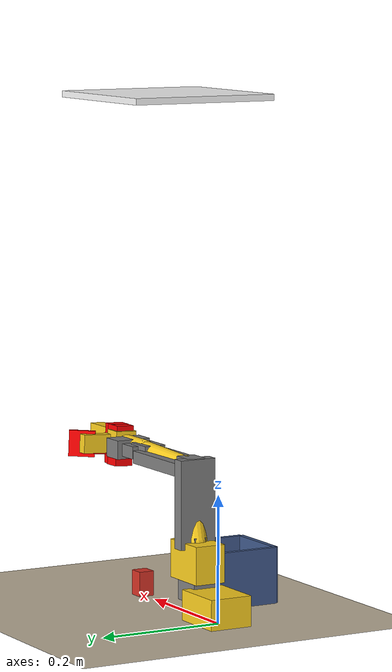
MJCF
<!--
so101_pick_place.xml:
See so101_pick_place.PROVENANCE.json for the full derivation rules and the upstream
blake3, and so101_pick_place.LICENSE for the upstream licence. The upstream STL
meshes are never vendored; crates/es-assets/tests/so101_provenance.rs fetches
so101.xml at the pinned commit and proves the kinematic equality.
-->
<mujoco model="so101_reach_mjx">
  <include file="../../../tests/fixtures/mjcf/so101_pick_place.xml"/>
  <contact>
    <exclude body1="shoulder" body2="upper_arm"/>
    <exclude body1="shoulder" body2="lower_arm"/>
    <exclude body1="shoulder" body2="wrist"/>
    <exclude body1="shoulder" body2="gripper"/>
    <exclude body1="shoulder" body2="camera_mount"/>
    <exclude body1="shoulder" body2="moving_jaw_so101_v1"/>
    <exclude body1="upper_arm" body2="lower_arm"/>
    <exclude body1="upper_arm" body2="wrist"/>
    <exclude body1="upper_arm" body2="gripper"/>
    <exclude body1="upper_arm" body2="camera_mount"/>
    <exclude body1="upper_arm" body2="moving_jaw_so101_v1"/>
    <exclude body1="lower_arm" body2="wrist"/>
    <exclude body1="lower_arm" body2="gripper"/>
    <exclude body1="lower_arm" body2="camera_mount"/>
    <exclude body1="lower_arm" body2="moving_jaw_so101_v1"/>
    <exclude body1="wrist" body2="gripper"/>
    <exclude body1="wrist" body2="camera_mount"/>
    <exclude body1="wrist" body2="moving_jaw_so101_v1"/>
    <exclude body1="gripper" body2="camera_mount"/>
    <exclude body1="gripper" body2="moving_jaw_so101_v1"/>
    <exclude body1="camera_mount" body2="moving_jaw_so101_v1"/>
    <exclude body1="world" body2="shoulder"/>
    <exclude body1="world" body2="upper_arm"/>
    <exclude body1="world" body2="lower_arm"/>
    <exclude body1="world" body2="wrist"/>
    <exclude body1="world" body2="gripper"/>
    <exclude body1="world" body2="camera_mount"/>
    <exclude body1="world" body2="moving_jaw_so101_v1"/>
    <exclude body1="shoulder" body2="cube"/>
    <exclude body1="upper_arm" body2="cube"/>
    <exclude body1="lower_arm" body2="cube"/>
    <exclude body1="wrist" body2="cube"/>
    <exclude body1="camera_mount" body2="cube"/>
    <exclude body1="gripper" body2="cube"/>
    <exclude body1="moving_jaw_so101_v1" body2="cube"/>
  </contact>
</mujoco>

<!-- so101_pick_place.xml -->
<mujoco model="so101_pick_place">
  <option integrator="implicitfast" timestep="0.005" cone="elliptic" iterations="10" impratio="10"/>

  <compiler angle="radian" autolimits="true"/>

  <default>
    <default class="sts3215">
      <joint damping="0.60" frictionloss="0.052" armature="0.028"/>
      <position kp="998.22" kv="2.731" forcerange="-2.94 2.94"/>
    </default>
  </default>

  <worldbody>
    <!-- Table: the ground plane the arm, the cube and the bin stand on. -->
    <geom name="table" type="plane" size="0.6 0.6 0.05" rgba="0.76 0.71 0.62 1"/>

    <geom name="bin_floor" type="box" size="0.054 0.054 0.004" pos="0.14 -0.1 0.004" rgba="0.25 0.35 0.55 1"/>
    <geom name="bin_wall_nx" type="box" size="0.004 0.054 0.045" pos="0.086 -0.1 0.045" rgba="0.25 0.35 0.55 1"/>
    <geom name="bin_wall_px" type="box" size="0.004 0.054 0.045" pos="0.194 -0.1 0.045" rgba="0.25 0.35 0.55 1"/>
    <geom name="bin_wall_ny" type="box" size="0.054 0.004 0.045" pos="0.14 -0.154 0.045" rgba="0.25 0.35 0.55 1"/>
    <geom name="bin_wall_py" type="box" size="0.054 0.004 0.045" pos="0.14 -0.046 0.045" rgba="0.25 0.35 0.55 1"/>

    <!-- Emitter for the path-traced render path: es-render infers emission from the
         `_light` name suffix (crates/es-render/src/scene.rs:30). -->
    <geom name="ceiling_light" type="box" size="0.12 0.12 0.005" pos="0.16 0 0.8" contype="0" conaffinity="0"
      rgba="1 1 1 1"/>

    <!-- The one fixed overhead camera the Observation IR declares. Identity orientation
         looks along -Z with image-up along +Y. -->
    <camera name="overhead" pos="0.16 0 0.5" fovy="45"/>

    <!-- Link base -->
    <body name="base" pos="0 0 0" quat="1 0 0 0">
      <inertial pos="0.0137179 -5.19711e-05 0.0334843" mass="0.147"
        fullinertia="0.000114686 0.000136117 0.000130364 -4.59787e-07 4.97151e-06 9.75275e-08"/>
      <!-- Replaces the base_motor_holder_so101_v1, base_so101_v2, sts3215_03a_v1 and
           waveshare_mounting_plate_so101_v2 visual meshes. -->
      <geom name="base_shell" type="box" size="0.045 0.035 0.024" pos="0.005 0 0.024" contype="0" conaffinity="0"
        rgba="1 0.82 0.12 1"/>
      <!-- Frame baseframe -->
      <site name="baseframe" pos="0 0 0" quat="1 0 0 0"/>
      <!-- Link shoulder -->
      <body name="shoulder" pos="0.0388353 0 0.0624" quat="0 0 -1 0">
        <!-- Joint from base to shoulder -->
        <joint axis="0 0 1" name="shoulder_pan" type="hinge" range="-1.91986 1.91986" class="sts3215"/>
        <inertial pos="-0.0307604 -1.7e-05 -0.0252713" mass="0.100006"
          fullinertia="8.3759e-05 8.10403e-05 2.39783e-05 7.55525e-08 -1.16342e-06 1.54663e-07"/>
        <!-- Upstream class="collision" primitive, sts3215_03a_v1_2 -->
        <geom name="shoulder_servo_col" type="box" condim="3" pos="-0.030399 0.000422 -0.0387" quat="1 1 1 -1"
          size="0.023 0.015 0.01"/>
        <!-- Upstream class="collision" primitive, motor_holder_so101_base_v1 -->
        <geom name="shoulder_holder_col" type="box" condim="3" pos="-0.025 0 0.0" quat="1 1 -1 1"
          size="0.038 0.025 0.02"/>
        <!-- Replaces the sts3215_03a_v1_2, motor_holder_so101_base_v1 and
             rotation_pitch_so101_v1 visual meshes. -->
        <geom name="shoulder_shell" type="box" size="0.04 0.025 0.03" pos="-0.025 0 -0.025" contype="0"
          conaffinity="0" rgba="1 0.82 0.12 1"/>
        <!-- Link upper_arm -->
        <body name="upper_arm" pos="-0.0303992 -0.0182778 -0.0542" quat="1 -1 -1 -1">
          <!-- Joint from shoulder to upper_arm -->
          <joint axis="0 0 1" name="shoulder_lift" type="hinge" range="-1.7453293 1.7453293" class="sts3215"/>
          <inertial pos="-0.089847 -0.008382 0.018409" mass="0.103"
            fullinertia="4.08002e-05 0.000147318 0.000142487 -1.97819e-05 -4.03016e-08 8.97326e-09"/>
          <!-- Upstream class="collision" primitive, sts3215_03a_v1_3 -->
          <geom name="upper_arm_servo_col" type="box" condim="3" pos="-0.06 0 0.02" quat="0 -1 1 0"
            size="0.01 0.07 0.03"/>
          <!-- Upstream class="collision" primitive, upper_arm_so101_v1 -->
          <geom name="upper_arm_link_col" type="box" condim="3" pos="-0.12 -0.014 0.0182" quat="0 1 0 0"
            size="0.01 0.02 0.015"/>
          <!-- Replaces the sts3215_03a_v1_3 and upper_arm_so101_v1 visual meshes. -->
          <geom name="upper_arm_shell" type="capsule" size="0.018" fromto="0 0 0.0182 -0.11257 -0.028 0.0182"
            contype="0" conaffinity="0" rgba="1 0.82 0.12 1"/>
          <!-- Link lower_arm -->
          <body name="lower_arm" pos="-0.11257 -0.028 0" quat="1 0 0 1">
            <!-- Joint from upper_arm to lower_arm -->
            <!-- Note: 5-degree calibration offset applied to joint range -->
            <joint axis="0 0 1" name="elbow_flex" type="hinge" range="-1.69 1.69" class="sts3215"/>
            <inertial pos="-0.098070 0.0032438 0.018283" mass="0.104"
              fullinertia="2.87438e-05 0.000159844 0.00014529 7.41152e-06 1.26409e-06 -4.90188e-08"/>
            <!-- Upstream class="collision" primitive, under_arm_so101_v1 -->
            <geom name="lower_arm_link_col" type="box" condim="3" pos="-0.05 0 0.0182" quat="0 1 0 0"
              size="0.07 0.01 0.03"/>
            <!-- Upstream class="collision" primitive, motor_holder_so101_wrist_v1 -->
            <geom name="lower_arm_holder_col" type="box" condim="3" pos="-0.125 0.005 0.018" quat="0 -1 0 0"
              size="0.023 0.013 0.018"/>
            <!-- Replaces the under_arm_so101_v1, motor_holder_so101_wrist_v1 and
                 sts3215_03a_v1_4 visual meshes. -->
            <geom name="lower_arm_shell" type="capsule" size="0.016" fromto="0 0 0.0182 -0.1349 0.0052 0.0182"
              contype="0" conaffinity="0" rgba="1 0.82 0.12 1"/>
            <!-- Link wrist -->
            <body name="wrist" pos="-0.1349 0.0052 0" quat="1 0 0 -1">
              <!-- Joint from lower_arm to wrist -->
              <joint axis="0 0 1" name="wrist_flex" type="hinge" range="-1.658063 1.658063" class="sts3215"/>
              <inertial pos="-0.000103312 -0.0386143 0.0281156" mass="0.079"
                fullinertia="3.68263e-05 2.5391e-05 2.1e-05 1.7893e-08 -5.28128e-08 3.6412e-06"/>
              <!-- Upstream class="collision" primitive, sts3215_03a_no_horn_v1 -->
              <geom name="wrist_servo_col" type="box" condim="3" pos="0 -0.0424 0.0256" quat="1 1 1 -1"
                size="0.029 0.015 0.018"/>
              <!-- Upstream class="collision" primitive, wrist_roll_pitch_so101_v2 -->
              <geom name="wrist_pitch_col" type="box" condim="3" pos="0 -0.02 0.0191" quat="1 -1 -1 -1"
                size="0.027 0.01 0.03"/>
              <!-- Replaces the sts3215_03a_no_horn_v1 and wrist_roll_pitch_so101_v2 visual meshes. -->
              <geom name="wrist_shell" type="capsule" size="0.017" fromto="0 0 0.0181 0 -0.0611 0.0181"
                contype="0" conaffinity="0" rgba="1 0.82 0.12 1"/>
              <!-- Link gripper -->
              <body name="gripper" pos="5.55112e-17 -0.0611 0.0181" quat="0.0172091 -0.0172091 0.706897 0.706897">
                <!-- Joint from wrist to gripper -->
                <joint axis="0 0 1" name="wrist_roll" type="hinge" range="-2.7438473 2.7438473" class="sts3215"/>
                <inertial pos="0.000214 0.000245 -0.025187" mass="0.087"
                  fullinertia="2.75087e-05 4.33657e-05 3.45059e-05 -3.35241e-07 -5.7352e-06 -5.17847e-08"/>
                <!-- Upstream class="collision" primitive, wrist_roll_follower_so101_v1 -->
                <geom name="fixed_jaw_col" type="box" condim="3" pos="0 -0.000218 0.00095" quat="0 1 0 0"
                  size="0.01 0.01 0.018"/>
                <!-- Upstream class="collision_gripper" primitives -->
                <geom name="fixed_jaw_box1" type="box" size="0.0325 0.015 0.015" pos="-0.0025 0 -0.022" condim="6"
                  friction="1 5e-3 5e-4" solref="0.01 1" rgba="1 0 0 1" mass="0"/>
                <geom name="fixed_jaw_box2" type="box" size="0.01 0.015 0.005" pos="-0.024 0 -0.04" condim="6"
                  friction="1 5e-3 5e-4" solref="0.01 1" rgba="1 0 0 1" mass="0"/>
                <geom name="fixed_jaw_sph_tip1" type="sphere" size="0.00075" pos="-0.0081 0 -0.101" condim="6"
                  friction="1 5e-3 5e-4" solref="0.01 1" rgba="1 0 0 1" mass="0"/>
                <geom name="fixed_jaw_sph_tip2" type="sphere" size="0.00075" pos="-0.0081 0.0035 -0.0975"
                  condim="6" friction="1 5e-3 5e-4" solref="0.01 1" rgba="1 0 0 1" mass="0"/>
                <geom name="fixed_jaw_sph_tip3" type="sphere" size="0.00075" pos="-0.0081 -0.0035 -0.0975"
                  condim="6" friction="1 5e-3 5e-4" solref="0.01 1" rgba="1 0 0 1" mass="0"/>
                <geom name="fixed_jaw_box3" type="capsule" size="0.0011 0.002" pos="-0.009 0 -0.103"
                  euler="1.57 0 0" condim="6" friction="1 5e-3 5e-4" solref="0.01 1" rgba="1 0 0 1" mass="0"/>
                <geom name="fixed_jaw_box4" type="box" size="0.001 0.004 0.004" pos="-0.009 0 -0.0982" condim="6"
                  friction="1 5e-3 5e-4" solref="0.01 1" rgba="1 0 0 1" mass="0"/>
                <geom name="fixed_jaw_box5" type="box" size="0.001 0.005 0.006" pos="-0.0108 0 -0.0905"
                  condim="6" friction="1 5e-3 5e-4" solref="0.01 1" rgba="1 0 0 1" mass="0"/>
                <geom name="fixed_jaw_box6" type="box" size="0.001 0.009 0.008" pos="-0.0125 0 -0.0727"
                  condim="6" friction="1 5e-3 5e-4" solref="0.01 1" rgba="1 0 0 1" mass="0"/>
                <geom name="fixed_jaw_box7" type="box" size="0.001 0.01 0.008" pos="-0.0143 0 -0.053" condim="6"
                  friction="1 5e-3 5e-4" solref="0.01 1" rgba="1 0 0 1" mass="0"/>
                <!-- Replaces the sts3215_03a_v1_5 and wrist_roll_follower_so101_v1 visual meshes. -->
                <geom name="gripper_shell" type="box" size="0.018 0.018 0.015" pos="0.004 0 -0.018" contype="0"
                  conaffinity="0" rgba="1 0.82 0.12 1"/>
                <!-- Frame gripperframe -->
                <site name="gripperframe" pos="0.012 -0.000218 -0.098127" quat="1 0 1 0"/>
                <!-- Camera mount -->
                <body name="camera_mount">
                  <!-- Upstream class="collision_gripper" primitives -->
                  <geom name="camera_box1" type="box" size="0.015 0.015 0.003" pos="-0.0025 0.03 -0.03"
                    condim="6" friction="1 5e-3 5e-4" solref="0.01 1" rgba="1 0 0 1" mass="0"/>
                  <geom name="camera_box2" type="box" size="0.021 0.021 0.003" pos="-0.001 0.06 -0.04"
                    euler="-0.55 0 0" condim="6" friction="1 5e-3 5e-4" solref="0.01 1" rgba="1 0 0 1" mass="0"/>
                  <!-- Replaces the wrist_roll_follower_so101_camera_mount visual mesh; carries
                       its 0.012 kg so the mount's mass is unchanged. -->
                  <geom name="camera_mount_shell" type="box" size="0.015 0.035 0.008" pos="0 0.03 -0.03"
                    mass="0.012" contype="0" conaffinity="0" rgba="1 0.82 0.12 1"/>
                </body>
                <!-- Link moving_jaw_so101_v1 -->
                <body name="moving_jaw_so101_v1" pos="0.0202 0.0188 -0.0234" quat="1 1 0 0">
                  <!-- Joint from gripper to moving_jaw_so101_v1 -->
                  <joint axis="0 0 1" name="gripper" type="hinge" range="-0.174533 1.7453292" class="sts3215"/>
                  <inertial pos="-0.001575 -0.0300244 0.0192755" mass="0.012"
                    fullinertia="6.61427e-06 1.89032e-06 5.28738e-06 -3.19807e-07 -5.90717e-09 -1.09945e-07"/>
                  <!-- Upstream class="collision_gripper" primitives -->
                  <geom name="moving_jaw_box1" type="box" size="0.01 0.01 0.015" pos="-0.0 -0.013 0.019"
                    condim="6" friction="1 5e-3 5e-4" solref="0.01 1" rgba="1 0 0 1" mass="0"/>
                  <geom name="moving_jaw_sph_tip1" type="sphere" size="0.00075" pos="-0.012 -0.078 0.0192"
                    condim="6" friction="1 5e-3 5e-4" solref="0.01 1" rgba="1 0 0 1" mass="0"/>
                  <geom name="moving_jaw_sph_tip2" type="sphere" size="0.00075" pos="-0.012 -0.0745 0.0225"
                    condim="6" friction="1 5e-3 5e-4" solref="0.01 1" rgba="1 0 0 1" mass="0"/>
                  <geom name="moving_jaw_sph_tip3" type="sphere" size="0.00075" pos="-0.012 -0.0745 0.0155"
                    condim="6" friction="1 5e-3 5e-4" solref="0.01 1" rgba="1 0 0 1" mass="0"/>
                  <geom name="moving_jaw_box2" type="box" size="0.001 0.004 0.004" pos="-0.0113 -0.076 0.01875"
                    condim="6" friction="1 5e-3 5e-4" solref="0.01 1" rgba="1 0 0 1" mass="0"/>
                  <geom name="moving_jaw_box3" type="box" size="0.001 0.005 0.006" pos="-0.0093 -0.067 0.01875"
                    condim="6" friction="1 5e-3 5e-4" solref="0.01 1" rgba="1 0 0 1" mass="0"/>
                  <!-- Replaces the moving_jaw_so101_v1 visual mesh. -->
                  <geom name="moving_jaw_shell" type="box" size="0.008 0.04 0.012" pos="-0.006 -0.04 0.019"
                    contype="0" conaffinity="0" rgba="1 0.82 0.12 1"/>
                </body>
              </body>
            </body>
          </body>
        </body>
      </body>
    </body>

    <!-- The manipulated cube. Its free joint is the Task IR's randomization target. -->
    <body name="cube" pos="0.24 0 0.02">
      <freejoint name="cube_free"/>
      <inertial pos="0 0 0" mass="0.05" diaginertia="9.2708e-06 9.2708e-06 5.2083e-06"/>
      <geom name="cube_geom" type="box" size="0.0125 0.0125 0.02" condim="3" friction="1 0.03 0.003"
        rgba="0.85 0.2 0.15 1"/>
    </body>
  </worldbody>

  <actuator>
    <position class="sts3215" name="shoulder_pan" joint="shoulder_pan" ctrlrange="-1.91986 1.91986"/>
    <position class="sts3215" name="shoulder_lift" joint="shoulder_lift" ctrlrange="-1.74533 1.74533"/>
    <position class="sts3215" name="elbow_flex" joint="elbow_flex" ctrlrange="-1.69 1.69"/>
    <position class="sts3215" name="wrist_flex" joint="wrist_flex" ctrlrange="-1.65806 1.65806"/>
    <position class="sts3215" name="wrist_roll" joint="wrist_roll" ctrlrange="-2.74385 2.84121"/>
    <position class="sts3215" name="gripper" joint="gripper" ctrlrange="-0.17453 1.74533"/>
  </actuator>
</mujoco>
